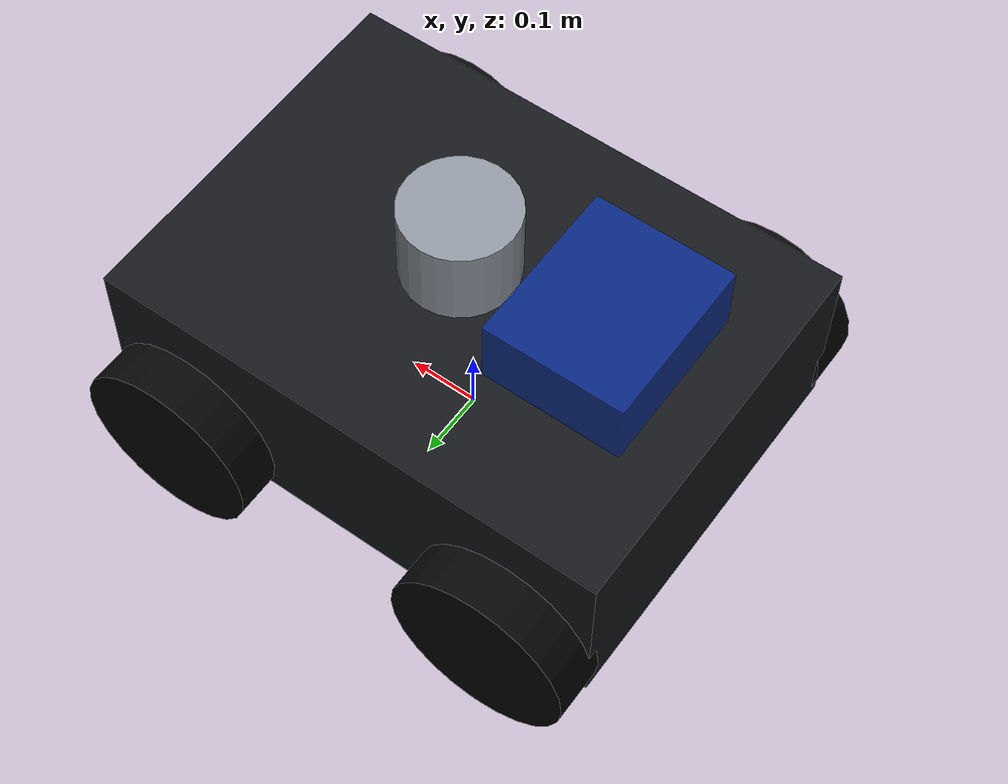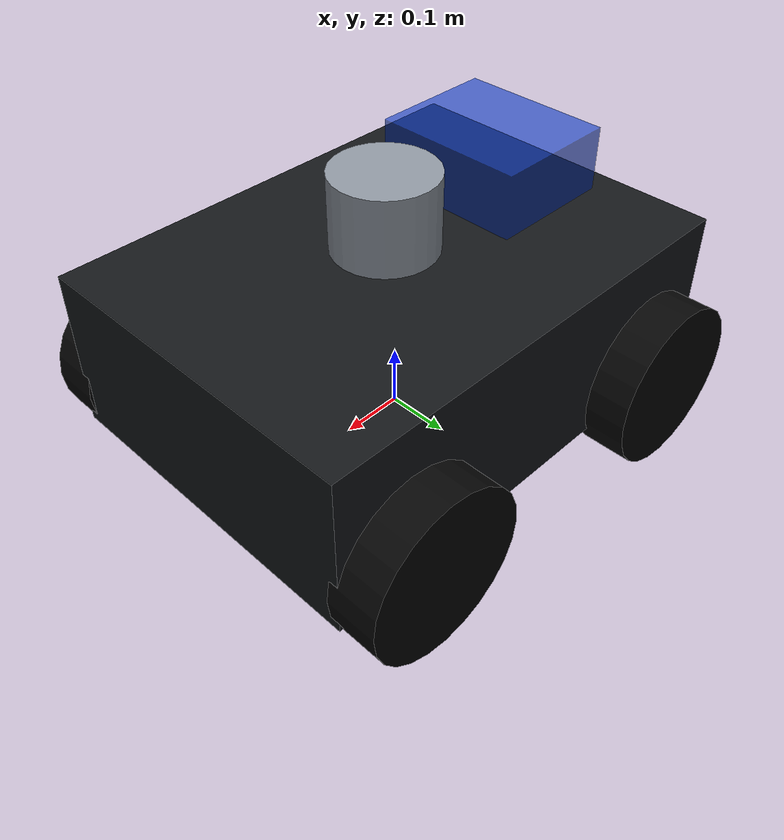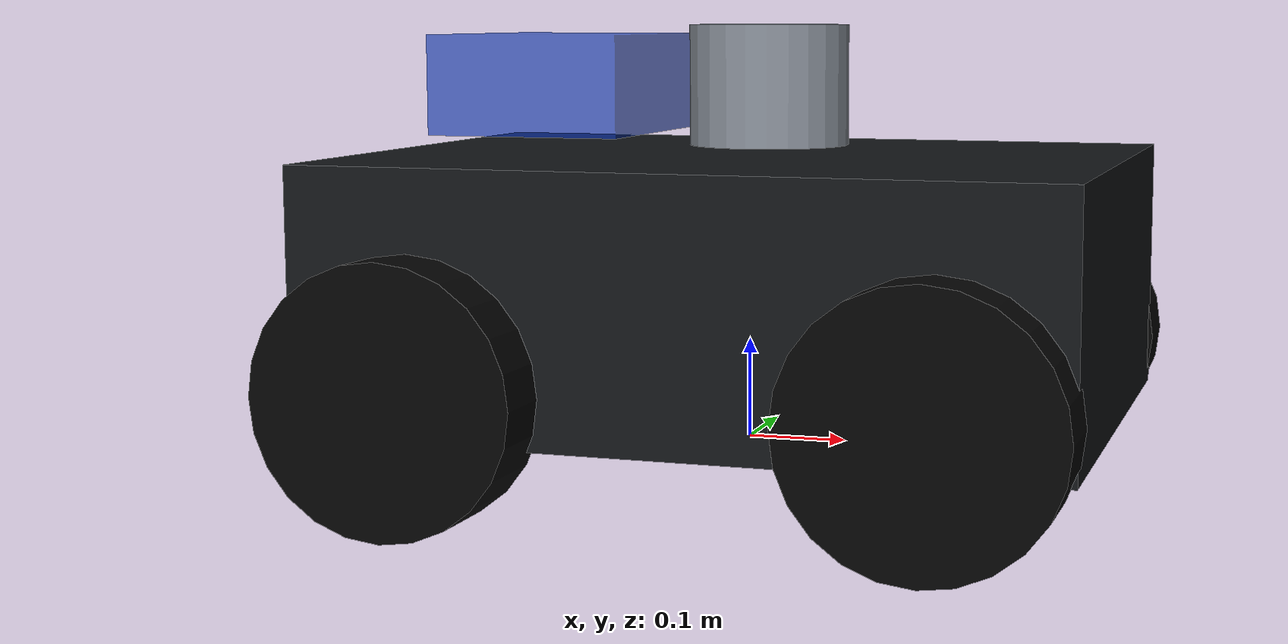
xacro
<?xml version="1.0"?>
<robot xmlns:xacro="http://www.ros.org/wiki/xacro" name="tzb_lunar_sampler">
  <xacro:arg name="use_mock_hardware" default="true"/>

  <xacro:macro name="box_inertial" params="mass x y z">
    <inertial>
      <mass value="${mass}"/>
      <inertia
        ixx="${mass * (y*y + z*z) / 12.0}" ixy="0.0" ixz="0.0"
        iyy="${mass * (x*x + z*z) / 12.0}" iyz="0.0"
        izz="${mass * (x*x + y*y) / 12.0}"/>
    </inertial>
  </xacro:macro>

  <link name="base_footprint"/>

  <joint name="base_footprint_joint" type="fixed">
    <parent link="base_footprint"/>
    <child link="base_link"/>
    <origin xyz="0 0 0.16" rpy="0 0 0"/>
  </joint>

  <link name="base_link">
    <visual>
      <origin xyz="0 0 0" rpy="0 0 0"/>
      <geometry>
        <box size="0.75 0.55 0.26"/>
      </geometry>
      <material name="scout_dark">
        <color rgba="0.08 0.09 0.10 1.0"/>
      </material>
    </visual>
    <collision>
      <geometry>
        <box size="0.75 0.55 0.26"/>
      </geometry>
    </collision>
    <xacro:box_inertial mass="22.0" x="0.75" y="0.55" z="0.26"/>
  </link>

  <joint name="front_left_wheel_joint" type="continuous">
    <parent link="base_link"/>
    <child link="front_left_wheel_link"/>
    <origin xyz="0.25 0.30 -0.08" rpy="1.5708 0 0"/>
    <axis xyz="0 0 1"/>
  </joint>

  <joint name="front_right_wheel_joint" type="continuous">
    <parent link="base_link"/>
    <child link="front_right_wheel_link"/>
    <origin xyz="0.25 -0.30 -0.08" rpy="1.5708 0 0"/>
    <axis xyz="0 0 1"/>
  </joint>

  <joint name="rear_left_wheel_joint" type="continuous">
    <parent link="base_link"/>
    <child link="rear_left_wheel_link"/>
    <origin xyz="-0.25 0.30 -0.08" rpy="1.5708 0 0"/>
    <axis xyz="0 0 1"/>
  </joint>

  <joint name="rear_right_wheel_joint" type="continuous">
    <parent link="base_link"/>
    <child link="rear_right_wheel_link"/>
    <origin xyz="-0.25 -0.30 -0.08" rpy="1.5708 0 0"/>
    <axis xyz="0 0 1"/>
  </joint>

  <xacro:macro name="wheel_visual" params="name">
    <link name="${name}">
      <visual>
        <geometry>
          <cylinder radius="0.13" length="0.08"/>
        </geometry>
        <material name="wheel_black">
          <color rgba="0.02 0.02 0.02 1.0"/>
        </material>
      </visual>
      <collision>
        <geometry>
          <cylinder radius="0.13" length="0.08"/>
        </geometry>
      </collision>
      <xacro:box_inertial mass="1.0" x="0.08" y="0.26" z="0.26"/>
    </link>
  </xacro:macro>

  <xacro:wheel_visual name="front_left_wheel_link"/>
  <xacro:wheel_visual name="front_right_wheel_link"/>
  <xacro:wheel_visual name="rear_left_wheel_link"/>
  <xacro:wheel_visual name="rear_right_wheel_link"/>

  <link name="piper_base_link">
    <visual>
      <geometry>
        <cylinder radius="0.08" length="0.12"/>
      </geometry>
      <material name="piper_gray">
        <color rgba="0.55 0.58 0.62 1.0"/>
      </material>
    </visual>
  </link>

  <joint name="piper_mount_joint" type="fixed">
    <parent link="base_link"/>
    <child link="piper_base_link"/>
    <origin xyz="0.02 0 0.20" rpy="0 0 0"/>
  </joint>

  <link name="sample_bin_link">
    <visual>
      <geometry>
        <box size="0.20 0.24 0.10"/>
      </geometry>
      <material name="sample_bin_blue">
        <color rgba="0.05 0.22 0.75 0.65"/>
      </material>
    </visual>
  </link>

  <joint name="sample_bin_joint" type="fixed">
    <parent link="base_link"/>
    <child link="sample_bin_link"/>
    <origin xyz="-0.20 0 0.20" rpy="0 0 0"/>
  </joint>

  <link name="rgbd_camera_link"/>
  <joint name="rgbd_camera_joint" type="fixed">
    <parent link="base_link"/>
    <child link="rgbd_camera_link"/>
    <origin xyz="0.32 0 0.46" rpy="0 0 0"/>
  </joint>

  <link name="lidar_link"/>
  <joint name="lidar_joint" type="fixed">
    <parent link="base_link"/>
    <child link="lidar_link"/>
    <origin xyz="0.22 0 0.42" rpy="0 0 0"/>
  </joint>

  <link name="imu_link"/>
  <joint name="imu_joint" type="fixed">
    <parent link="base_link"/>
    <child link="imu_link"/>
    <origin xyz="0 0 0.32" rpy="0 0 0"/>
  </joint>

  <link name="fill_light_link"/>
  <joint name="fill_light_joint" type="fixed">
    <parent link="base_link"/>
    <child link="fill_light_link"/>
    <origin xyz="0.36 0 0.38" rpy="0 0 0"/>
  </joint>
</robot>
